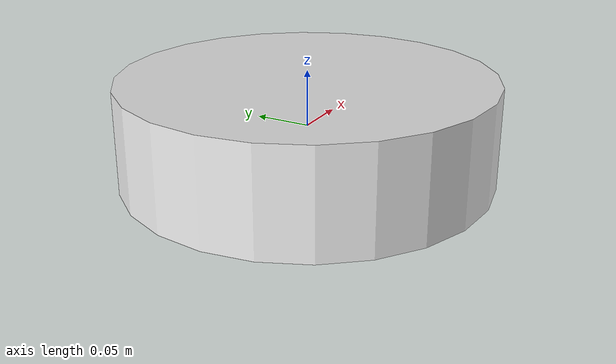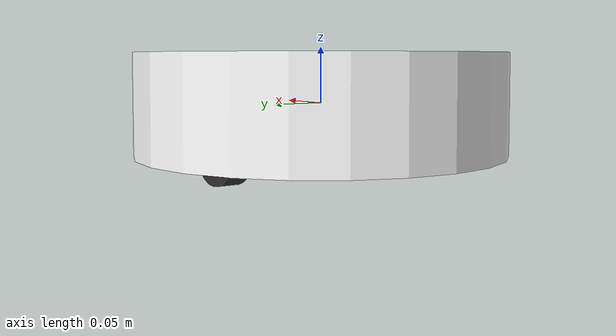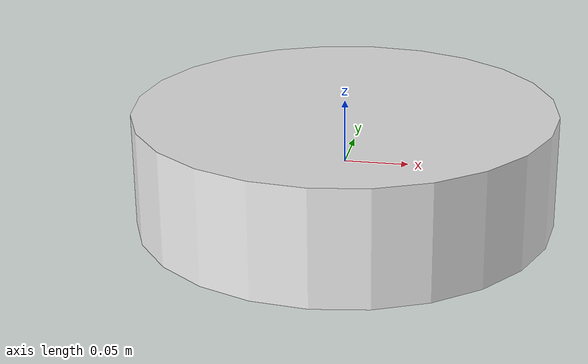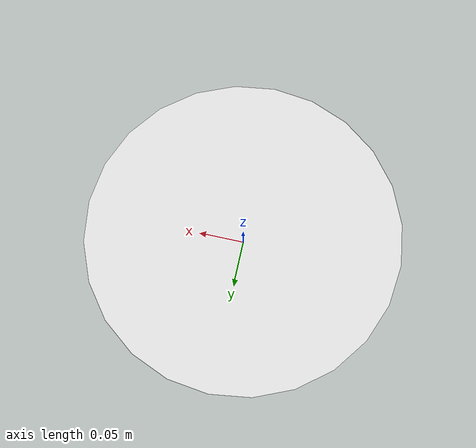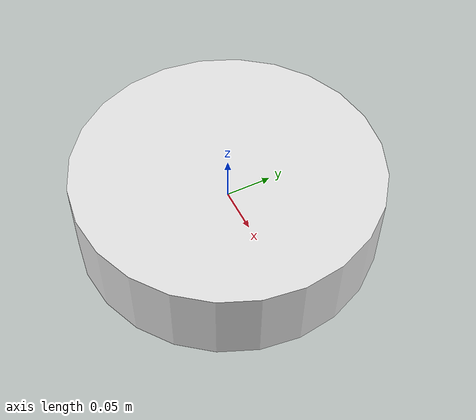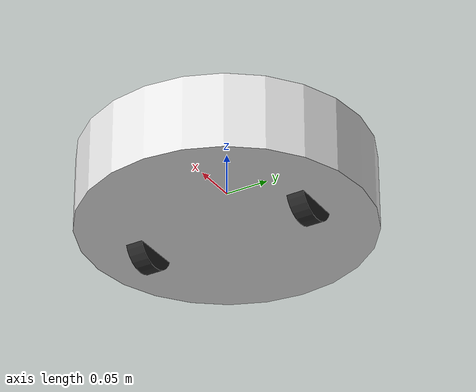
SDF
<?xml version="1.0" ?>
<sdf version="1.5">
  <model name="robot_sweeper">
    <pose>0.0 0.0 0.0 0.0 0.0 0.0</pose>

    <link name="base_footprint"/>

    <!-- 圆形机身：直径 0.33m，高 0.09m -->
    <link name="base_link">
      <inertial>
        <inertia>
          <ixx>0.03</ixx><ixy>0</ixy><ixz>0</ixz>
          <iyy>0.03</iyy><iyz>0</iyz>
          <izz>0.04</izz>
        </inertia>
        <mass>3.0</mass>
      </inertial>
      <collision name="base_collision">
        <geometry>
          <cylinder><radius>0.165</radius><length>0.09</length></cylinder>
        </geometry>
      </collision>
      <visual name="base_visual">
        <geometry>
          <cylinder><radius>0.165</radius><length>0.09</length></cylinder>
        </geometry>
        <material>
          <ambient>0.9 0.9 0.9 1.0</ambient>
          <diffuse>0.9 0.9 0.9 1.0</diffuse>
        </material>
      </visual>
    </link>

    <!-- 顶部激光雷达 -->
    <link name="base_scan">
      <inertial>
        <inertia><ixx>0.001</ixx><ixy>0</ixy><ixz>0</ixz><iyy>0.001</iyy><iyz>0</iyz><izz>0.001</izz></inertia>
        <mass>0.1</mass>
      </inertial>
      <visual name="lidar_visual">
        <geometry><cylinder><radius>0.035</radius><length>0.025</length></cylinder></geometry>
        <material><ambient>0.1 0.1 0.1 1.0</ambient></material>
      </visual>
      <sensor name="sweeper_lidar" type="ray">
        <pose>0 0 0.25 0 0 0</pose>
        <always_on>true</always_on>
        <visualize>true</visualize>
        <update_rate>20</update_rate>
        <ray>
          <scan>
            <horizontal>
              <samples>360</samples>
              <resolution>1.0</resolution>
              <min_angle>0.0</min_angle>
              <max_angle>6.28</max_angle>
            </horizontal>
          </scan>
          <range>
            <min>0.12</min>
            <max>30</max>
            <resolution>0.015</resolution>
          </range>
          <noise>
            <type>gaussian</type><mean>0.0</mean><stddev>0.01</stddev>
          </noise>
        </ray>
        <plugin name="sweeper_laserscan" filename="libgazebo_ros_ray_sensor.so">
          <ros><remapping>~/out:=scan</remapping></ros>
          <output_type>sensor_msgs/LaserScan</output_type>
          <frame_name>base_scan</frame_name>
        </plugin>
      </sensor>
    </link>

    <!-- 左轮 -->
    <link name="wheel_left_link">
      <inertial>
        <pose>0 0.10 -0.035 -1.5708 0 0</pose>
        <inertia><ixx>0.0001</ixx><ixy>0</ixy><ixz>0</ixz><iyy>0.0001</iyy><iyz>0</iyz><izz>0.0001</izz></inertia>
        <mass>0.05</mass>
      </inertial>
      <collision name="wheel_left_collision">
        <pose>0 0.10 -0.035 -1.5708 0 0</pose>
        <geometry><cylinder><radius>0.03</radius><length>0.02</length></cylinder></geometry>
        <surface>
          <friction>
            <ode><mu>100000.0</mu><mu2>100000.0</mu2></ode>
          </friction>
          <contact>
            <ode><soft_cfm>0</soft_cfm><soft_erp>0.2</soft_erp><kp>1e5</kp><kd>1</kd></ode>
          </contact>
        </surface>
      </collision>
      <visual name="wheel_left_visual">
        <pose>0 0.10 -0.035 -1.5708 0 0</pose>
        <geometry><cylinder><radius>0.03</radius><length>0.02</length></cylinder></geometry>
        <material><ambient>0.15 0.15 0.15 1.0</ambient></material>
      </visual>
    </link>

    <!-- 右轮 -->
    <link name="wheel_right_link">
      <inertial>
        <pose>0 -0.10 -0.035 -1.5708 0 0</pose>
        <inertia><ixx>0.0001</ixx><ixy>0</ixy><ixz>0</ixz><iyy>0.0001</iyy><iyz>0</iyz><izz>0.0001</izz></inertia>
        <mass>0.05</mass>
      </inertial>
      <collision name="wheel_right_collision">
        <pose>0 -0.10 -0.035 -1.5708 0 0</pose>
        <geometry><cylinder><radius>0.03</radius><length>0.02</length></cylinder></geometry>
        <surface>
          <friction>
            <ode><mu>100000.0</mu><mu2>100000.0</mu2></ode>
          </friction>
          <contact>
            <ode><soft_cfm>0</soft_cfm><soft_erp>0.2</soft_erp><kp>1e5</kp><kd>1</kd></ode>
          </contact>
        </surface>
      </collision>
      <visual name="wheel_right_visual">
        <pose>0 -0.10 -0.035 -1.5708 0 0</pose>
        <geometry><cylinder><radius>0.03</radius><length>0.02</length></cylinder></geometry>
        <material><ambient>0.15 0.15 0.15 1.0</ambient></material>
      </visual>
    </link>

    <!-- 前方万向支撑轮 -->
    <link name="caster_link">
      <pose>0.10 0 -0.053 0 0 0</pose>
      <inertial><mass>0.01</mass><inertia><ixx>0.001</ixx><ixy>0</ixy><ixz>0</ixz><iyy>0.001</iyy><iyz>0</iyz><izz>0.001</izz></inertia></inertial>
      <collision name="caster_collision">
        <geometry><sphere><radius>0.012</radius></sphere></geometry>
        <surface>
          <contact><ode><soft_cfm>0</soft_cfm><soft_erp>0.2</soft_erp><kp>1e5</kp><kd>1</kd></ode></contact>
        </surface>
      </collision>
    </link>

    <!-- 关节 -->
    <joint name="base_joint" type="fixed">
      <parent>base_footprint</parent>
      <child>base_link</child>
      <pose>0 0 0.065 0 0 0</pose>
    </joint>

    <joint name="wheel_left_joint" type="revolute">
      <parent>base_link</parent>
      <child>wheel_left_link</child>
      <pose>0 0.10 -0.035 -1.5708 0 0</pose>
      <axis><xyz>0 0 1</xyz></axis>
    </joint>

    <joint name="wheel_right_joint" type="revolute">
      <parent>base_link</parent>
      <child>wheel_right_link</child>
      <pose>0 -0.10 -0.035 -1.5708 0 0</pose>
      <axis><xyz>0 0 1</xyz></axis>
    </joint>

    <joint name="caster_joint" type="ball">
      <parent>base_link</parent>
      <child>caster_link</child>
    </joint>

    <joint name="lidar_joint" type="fixed">
      <parent>base_link</parent>
      <child>base_scan</child>
      <pose>0 0 0.15 0 0 0</pose>
      <axis><xyz>0 0 1</xyz></axis>
    </joint>

    <!-- 两轮差速驱动 -->
    <plugin name="sweeper_diff_drive" filename="libgazebo_ros_diff_drive.so">
      <update_rate>30</update_rate>
      <left_joint>wheel_left_joint</left_joint>
      <right_joint>wheel_right_joint</right_joint>
      <wheel_separation>0.20</wheel_separation>
      <wheel_diameter>0.06</wheel_diameter>
      <max_wheel_torque>20</max_wheel_torque>
      <max_wheel_acceleration>1.0</max_wheel_acceleration>
      <command_topic>cmd_vel</command_topic>
      <publish_odom>true</publish_odom>
      <publish_odom_tf>true</publish_odom_tf>
      <publish_wheel_tf>false</publish_wheel_tf>
      <odometry_topic>odom</odometry_topic>
      <odometry_frame>odom</odometry_frame>
      <robot_base_frame>base_footprint</robot_base_frame>
    </plugin>

    <plugin name="sweeper_joint_state" filename="libgazebo_ros_joint_state_publisher.so">
      <ros><remapping>~/out:=joint_states</remapping></ros>
      <update_rate>30</update_rate>
      <joint_name>wheel_left_joint</joint_name>
      <joint_name>wheel_right_joint</joint_name>
    </plugin>
  </model>
</sdf>
